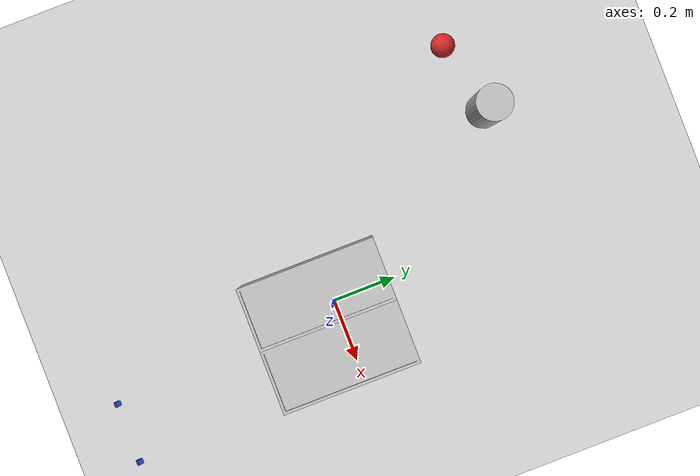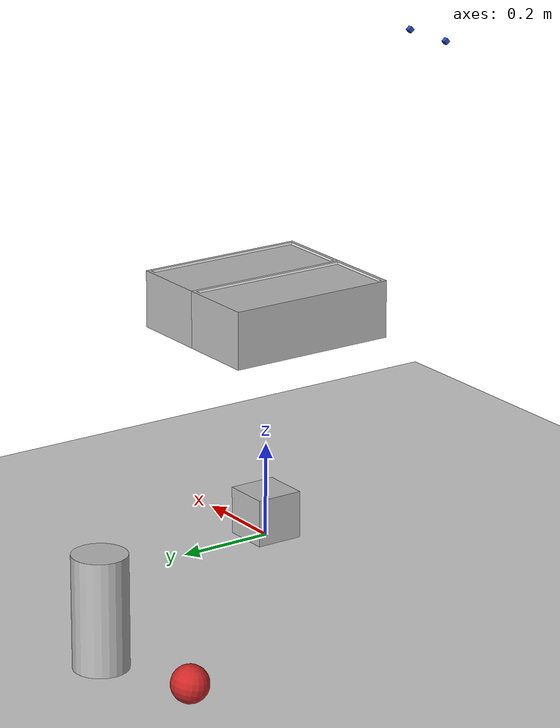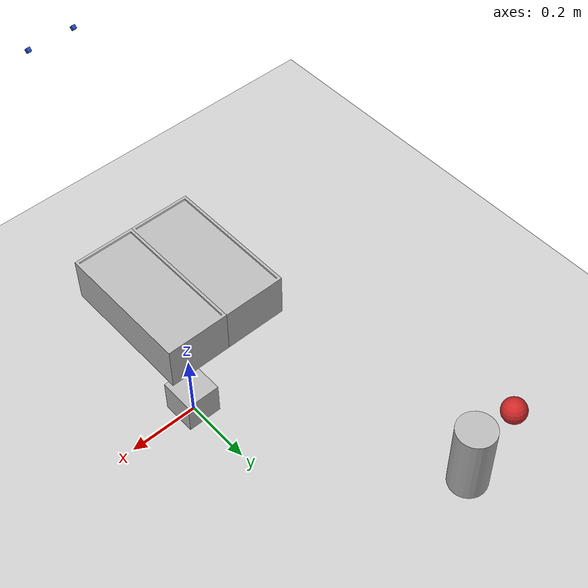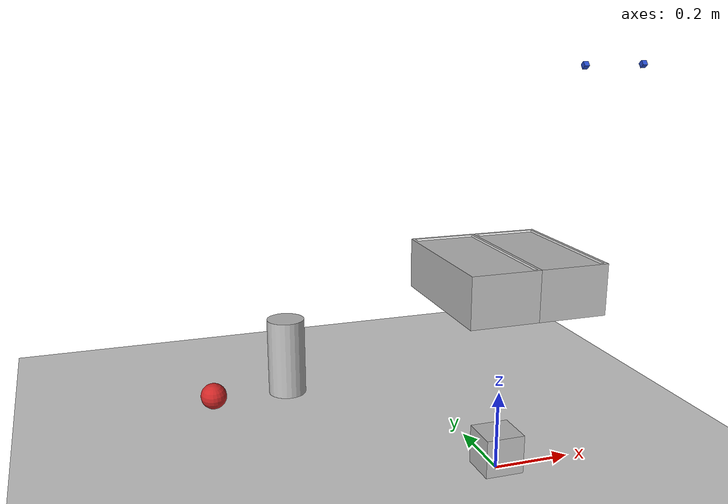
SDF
<sdf version="1.6">
 <world name="default">
  <light name="sun" type="directional">
   <pose>0 0 10 0 -0 0</pose>
   <diffuse>0.8 0.8 0.8 1</diffuse>
   <specular>0.2 0.2 0.2 1</specular>
   <attenuation>
    <range>1000</range>
    <constant>0.9</constant>
    <linear>0.01</linear>
    <quadratic>0.001</quadratic>
   </attenuation>
   <direction>-0.5 0.1 -0.9</direction>
  </light>
  <model name="ground_plane">
   <static>1</static>
   <link name="link">
    <collision name="collision">
     <geometry><plane><normal>0 0 1</normal><size>100 100</size></plane></geometry>
     <surface><friction><ode><mu>100</mu><mu2>50</mu2></ode></friction></surface>
    </collision>
    <visual name="visual">
     <cast_shadows>0</cast_shadows>
     <geometry><plane><normal>0 0 1</normal><size>100 100</size></plane></geometry>
     <material>
      <script><uri>file://media/materials/scripts/gazebo.material</uri><name>Gazebo/Grey</name></script>
     </material>
    </visual>
   </link>
  </model>
  <gravity>0 0 -9.8</gravity>
  <magnetic_field>6e-06 2.3e-05 -4.2e-05</magnetic_field>
  <atmosphere type="adiabatic"/>
  <physics name="default_physics" default="0" type="ode">
   <max_step_size>0.001</max_step_size>
   <real_time_factor>1</real_time_factor>
   <real_time_update_rate>1000</real_time_update_rate>
  </physics>
  <scene><ambient>0.4 0.4 0.4 1</ambient><background>0.7 0.7 0.7 1</background><shadows>1</shadows></scene>
  <spherical_coordinates>
   <surface_model>EARTH_WGS84</surface_model>
   <latitude_deg>0</latitude_deg>
   <longitude_deg>0</longitude_deg>
   <elevation>0</elevation>
   <heading_deg>0</heading_deg>
  </spherical_coordinates>
  <model name="ice_cream_trays">
   <link name="base_link">
    <inertial>
     <mass>1</mass>
     <inertia><ixx>1</ixx><ixy>0</ixy><ixz>0</ixz><iyy>1</iyy><iyz>0</iyz><izz>1</izz></inertia>
    </inertial>
    <collision name="base_link_collision">
     <pose>0 0 0.05 0 -0 0</pose>
     <geometry><box><size>0.1 0.1 0.1</size></box></geometry>
    </collision>
    <visual name="base_link_visual">
     <pose>0 0 0.05 0 -0 0</pose>
     <geometry><box><size>0.1 0.1 0.1</size></box></geometry>
    </visual>
   </link>
   <joint name="fixed_joint" type="fixed"><child>base_link</child><parent>world</parent></joint>
   <link name="vanilla_link">
    <pose>-0.0825 0 0.5 0 -0 0</pose>
    <inertial>
     <mass>1e-05</mass>
     <inertia><ixx>1e-06</ixx><ixy>0</ixy><ixz>0</ixz><iyy>1e-06</iyy><iyz>0</iyz><izz>1e-06</izz></inertia>
    </inertial>
    <collision name="vanilla_link_collision">
     <geometry><box><size>0.165 0.36 0.12</size></box></geometry>
    </collision>
    <visual name="vanilla_link_visual">
     <pose>0.0825 -0.18 -0.06 0 -0 1.5708</pose>
     <geometry>
      <mesh>
       <scale>1 1 1</scale>
       <uri>/home/ruofan/catkin_ws/src/scooping_cv/meshes/ice_cream_tray_vanilla.dae</uri>
      </mesh>
     </geometry>
    </visual>
   </link>
   <joint name="joint1" type="revolute">
    <child>vanilla_link</child>
    <parent>base_link</parent>
    <axis>
     <xyz>0 0 1</xyz>
     <limit><lower>-1e+16</lower><upper>1e+16</upper></limit>
     <dynamics><spring_reference>0</spring_reference><spring_stiffness>0</spring_stiffness></dynamics>
     <use_parent_model_frame>1</use_parent_model_frame>
    </axis>
   </joint>
   <link name="chocolate_link">
    <pose>0.0825 0 0.5 0 -0 0</pose>
    <inertial>
     <mass>1e-05</mass>
     <inertia><ixx>1e-06</ixx><ixy>0</ixy><ixz>0</ixz><iyy>1e-06</iyy><iyz>0</iyz><izz>1e-06</izz></inertia>
    </inertial>
    <collision name="chocolate_link_collision">
     <geometry><box><size>0.165 0.36 0.12</size></box></geometry>
    </collision>
    <visual name="chocolate_link_visual">
     <pose>0.0825 -0.18 -0.06 0 -0 1.5708</pose>
     <geometry>
      <mesh>
       <scale>1 1 1</scale>
       <uri>/home/ruofan/catkin_ws/src/scooping_cv/meshes/ice_cream_tray_chocolate.dae</uri>
      </mesh>
     </geometry>
    </visual>
   </link>
   <joint name="joint2" type="revolute">
    <child>chocolate_link</child>
    <parent>base_link</parent>
    <axis>
     <xyz>0 0 1</xyz>
     <limit><lower>-1e+16</lower><upper>1e+16</upper></limit>
     <dynamics><spring_reference>0</spring_reference><spring_stiffness>0</spring_stiffness></dynamics>
     <use_parent_model_frame>1</use_parent_model_frame>
    </axis>
   </joint>
   <link name="cam_left_link">
    <pose>-0.06 -0.4 1 -0 0.698132 1.5708</pose>
    <inertial>
     <mass>1e-05</mass>
     <inertia><ixx>1e-06</ixx><ixy>0</ixy><ixz>0</ixz><iyy>1e-06</iyy><iyz>0</iyz><izz>1e-06</izz></inertia>
    </inertial>
    <collision name="cam_left_link_collision">
     <pose>0 0 0 0 -0 1.5708</pose>
     <geometry><box><size>0.01 0.01 0.01</size></box></geometry>
    </collision>
    <visual name="cam_left_link_visual">
     <geometry><box><size>0.01 0.01 0.01</size></box></geometry>
     <material>
      <script><name>Gazebo/Blue</name><uri>file://media/materials/scripts/gazebo.material</uri></script>
     </material>
    </visual>
    <sensor name="zed_camera_left_sensor" type="depth">
     <update_rate>30</update_rate>
     <camera name="zed_camera_left_camera">
      <horizontal_fov>0.870922</horizontal_fov>
      <image><width>640</width><height>480</height><format>B8G8R8</format></image>
      <clip><near>0.02</near><far>300</far></clip>
      <noise><type>gaussian</type><mean>0</mean><stddev>0.007</stddev></noise>
     </camera>
     <plugin name="depth_camera_controller" filename="libgazebo_ros_openni_kinect.so">
      <baseline>0</baseline>
      <alwaysOn>1</alwaysOn>
      <updateRate>0</updateRate>
      <cameraName>zed</cameraName>
      <imageTopicName>/zed/rgb/image_raw_color</imageTopicName>
      <cameraInfoTopicName>/zed/rgb/camera_info</cameraInfoTopicName>
      <depthImageTopicName>/zed/depth/depth_registered</depthImageTopicName>
      <depthImageInfoTopicName>/zed/depth/camera_info</depthImageInfoTopicName>
      <pointCloudTopicName>/zed/point_cloud/cloud_registered</pointCloudTopicName>
      <frameName>cam_left_link</frameName>
      <pointCloudCutoff>0.5</pointCloudCutoff>
      <distortionK1>0.00000001</distortionK1>
      <distortionK2>0.00000001</distortionK2>
      <distortionK3>0.00000001</distortionK3>
      <distortionT1>0.00000001</distortionT1>
      <distortionT2>0.00000001</distortionT2>
      <CxPrime>0</CxPrime>
      <Cx>0</Cx>
      <Cy>0</Cy>
      <focalLength>0</focalLength>
      <hackBaseline>0</hackBaseline>
      <robotNamespace>/</robotNamespace>
     </plugin>
    </sensor>
   </link>
   <joint name="joint_cam_left" type="revolute">
    <child>cam_left_link</child>
    <parent>base_link</parent>
    <axis>
     <xyz>0 0.642788 0.766044</xyz>
     <limit><lower>-1e+16</lower><upper>1e+16</upper></limit>
     <dynamics><spring_reference>0</spring_reference><spring_stiffness>0</spring_stiffness></dynamics>
     <use_parent_model_frame>1</use_parent_model_frame>
    </axis>
   </joint>
   <link name="cam_right_link">
    <pose>0.06 -0.4 1 -0 0.698132 1.5708</pose>
    <inertial>
     <mass>1e-05</mass>
     <inertia><ixx>1e-06</ixx><ixy>0</ixy><ixz>0</ixz><iyy>1e-06</iyy><iyz>0</iyz><izz>1e-06</izz></inertia>
    </inertial>
    <collision name="cam_right_link_collision">
     <geometry><box><size>0.01 0.01 0.01</size></box></geometry>
    </collision>
    <visual name="cam_right_link_visual">
     <geometry><box><size>0.01 0.01 0.01</size></box></geometry>
     <material>
      <script><name>Gazebo/Blue</name><uri>file://media/materials/scripts/gazebo.material</uri></script>
     </material>
    </visual>
    <sensor name="zed_camera_right_sensor" type="camera">
     <update_rate>30</update_rate>
     <camera name="zed_camera_right_camera">
      <horizontal_fov>0.870922</horizontal_fov>
      <image><width>640</width><height>480</height><format>B8G8R8</format></image>
      <clip><near>0.02</near><far>300</far></clip>
      <noise><type>gaussian</type><mean>0</mean><stddev>0.007</stddev></noise>
     </camera>
     <plugin name="camera_controller" filename="libgazebo_ros_camera.so">
      <alwaysOn>1</alwaysOn>
      <updateRate>30.0</updateRate>
      <cameraName>zed</cameraName>
      <imageTopicName>/zed/right/image_raw_color</imageTopicName>
      <cameraInfoTopicName>/zed/right/camera_info</cameraInfoTopicName>
      <frameName>cam_right_link</frameName>
      <hackBaseline>0.12</hackBaseline>
      <distortionK1>0.0</distortionK1>
      <distortionK2>0.0</distortionK2>
      <distortionK3>0.0</distortionK3>
      <distortionT1>0.0</distortionT1>
      <distortionT2>0.0</distortionT2>
      <robotNamespace>/</robotNamespace>
     </plugin>
    </sensor>
   </link>
   <joint name="joint_cam_right" type="revolute">
    <child>cam_right_link</child>
    <parent>base_link</parent>
    <axis>
     <xyz>0 0.642788 0.766044</xyz>
     <limit><lower>-1e+16</lower><upper>1e+16</upper></limit>
     <dynamics><spring_reference>0</spring_reference><spring_stiffness>0</spring_stiffness></dynamics>
     <use_parent_model_frame>1</use_parent_model_frame>
    </axis>
   </joint>
  </model>
  <model name="beer">
   <link name="link">
    <pose>0 0 0.115 0 -0 0</pose>
    <inertial>
     <mass>0.39</mass>
     <inertia><ixx>0.00058</ixx><ixy>0</ixy><ixz>0</ixz><iyy>0.00058</iyy><iyz>0</iyz><izz>0.00019</izz></inertia>
    </inertial>
    <collision name="collision">
     <geometry><cylinder><radius>0.055</radius><length>0.23</length></cylinder></geometry>
    </collision>
    <visual name="visual">
     <geometry><cylinder><radius>0.055</radius><length>0.23</length></cylinder></geometry>
     <material>
      <script>
       <uri>model://beer/materials/scripts</uri>
       <uri>model://beer/materials/textures</uri>
       <name>Beer/Diffuse</name>
      </script>
     </material>
    </visual>
   </link>
   <pose>-0.382647 0.64216 -2e-06 1e-06 0 -7e-06</pose>
  </model>
  <model name="cricket_ball">
   <link name="link">
    <pose>0 0 0.0375 0 -0 0</pose>
    <inertial>
     <mass>0.1467</mass>
     <inertia>
      <ixx>8.25187e-05</ixx>
      <ixy>0</ixy>
      <ixz>0</ixz>
      <iyy>8.25187e-05</iyy>
      <iyz>0</iyz>
      <izz>8.25187e-05</izz>
     </inertia>
    </inertial>
    <collision name="collision">
     <geometry><sphere><radius>0.0375</radius></sphere></geometry>
     <surface>
      <contact>
       <poissons_ratio>0.347</poissons_ratio>
       <elastic_modulus>8.8e+09</elastic_modulus>
       <ode><kp>100000</kp><kd>100</kd><max_vel>100</max_vel><min_depth>0.001</min_depth></ode>
      </contact>
      <friction>
       <torsional>
        <coefficient>1</coefficient>
        <use_patch_radius>0</use_patch_radius>
        <surface_radius>0.01</surface_radius>
       </torsional>
      </friction>
     </surface>
    </collision>
    <visual name="visual">
     <geometry><sphere><radius>0.0375</radius></sphere></geometry>
     <material>
      <script><uri>file://media/materials/scripts/gazebo.material</uri><name>Gazebo/Red</name></script>
     </material>
    </visual>
    <velocity_decay><linear>0</linear><angular>0.005</angular></velocity_decay>
   </link>
   <pose>-0.609001 0.598192 -0.000482 0.151205 -0.075025 0.133721</pose>
  </model>
  <model name="cricket_ball_0">
   <link name="link">
    <pose>0 0 0.0375 0 -0 0</pose>
    <inertial>
     <mass>0.1467</mass>
     <inertia>
      <ixx>8.25187e-05</ixx>
      <ixy>0</ixy>
      <ixz>0</ixz>
      <iyy>8.25187e-05</iyy>
      <iyz>0</iyz>
      <izz>8.25187e-05</izz>
     </inertia>
    </inertial>
    <collision name="collision">
     <geometry><sphere><radius>0.0375</radius></sphere></geometry>
     <surface>
      <contact>
       <poissons_ratio>0.347</poissons_ratio>
       <elastic_modulus>8.8e+09</elastic_modulus>
       <ode><kp>100000</kp><kd>100</kd><max_vel>100</max_vel><min_depth>0.001</min_depth></ode>
      </contact>
      <friction>
       <torsional>
        <coefficient>1</coefficient>
        <use_patch_radius>0</use_patch_radius>
        <surface_radius>0.01</surface_radius>
       </torsional>
      </friction>
     </surface>
    </collision>
    <visual name="visual">
     <geometry><sphere><radius>0.0375</radius></sphere></geometry>
     <material>
      <script><uri>file://media/materials/scripts/gazebo.material</uri><name>Gazebo/Red</name></script>
     </material>
    </visual>
    <velocity_decay><linear>0</linear><angular>0.005</angular></velocity_decay>
   </link>
   <pose>0 0 -0.032302 0 -0 0</pose>
  </model>
 </world>
</sdf>
